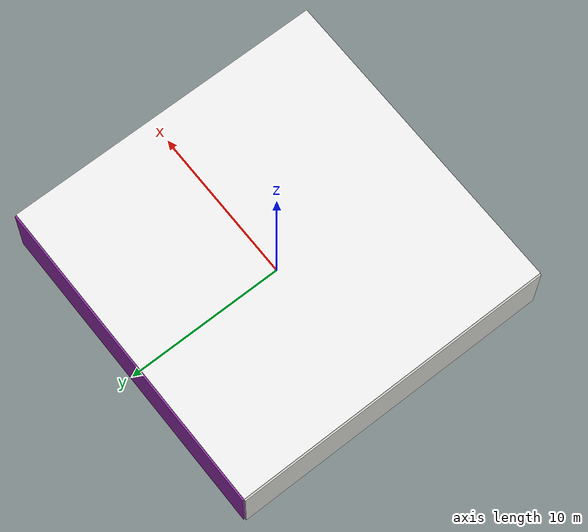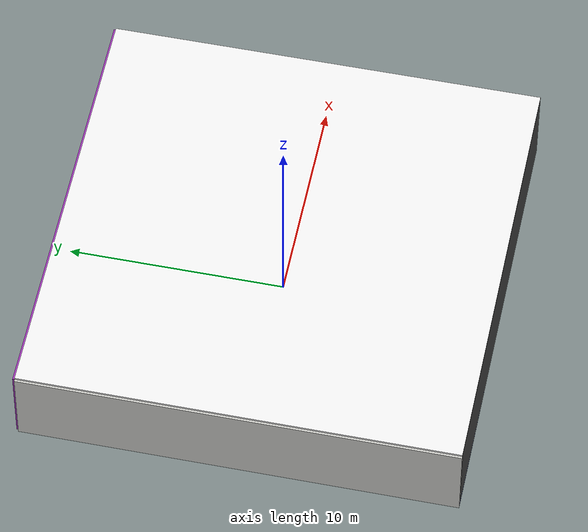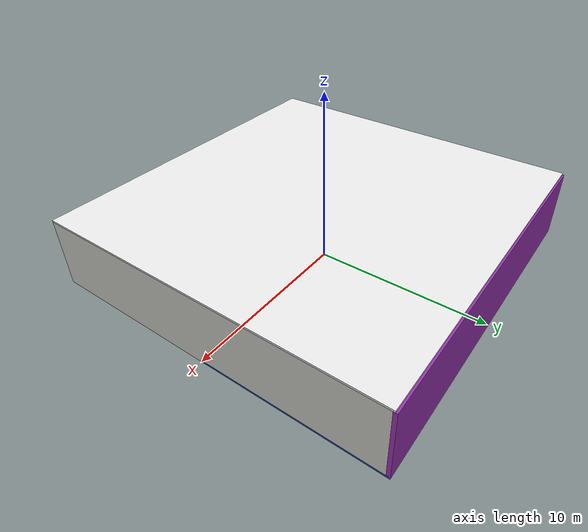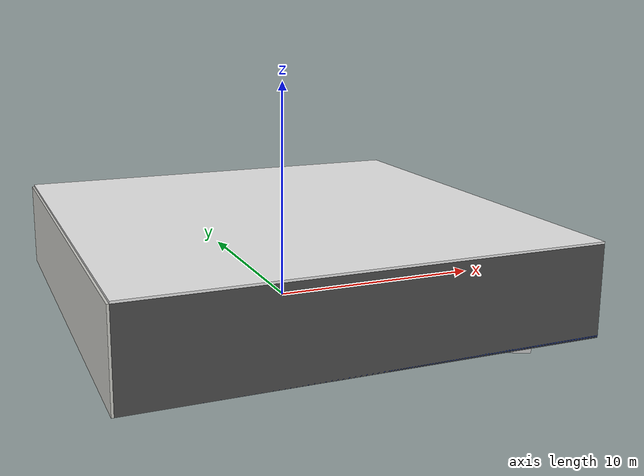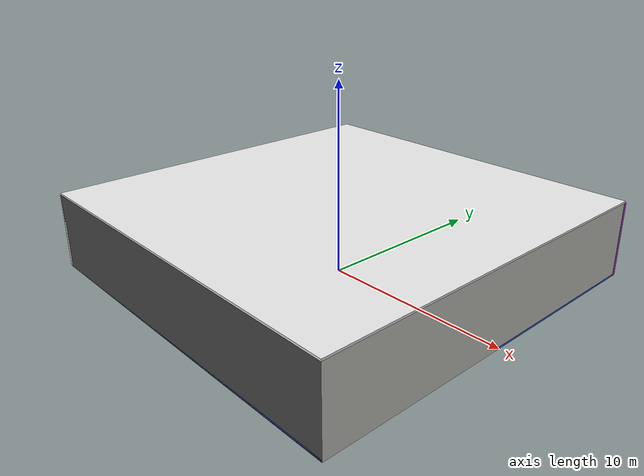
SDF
<sdf version="1.4">
 <world name="default">
  <physics type="ode">
   <max_step_size>0.001</max_step_size>
   <real_time_factor>1</real_time_factor>
   <real_time_update_rate>1000</real_time_update_rate>
   <gravity>0 0 -9.8</gravity>
  </physics>
  <scene><ambient>0.4 0.4 0.4 1</ambient><background>0.7 0.7 0.7 1</background><shadows>1</shadows></scene>
  <model name="Surrounding">
   <static>1</static>
   <link name="Ceiling">
    <collision name="Ceiling_Collision"><geometry><box><size>20 20 0.1</size></box></geometry></collision>
    <visual name="Ceiling_Visual">
     <geometry><box><size>20 20 0.1</size></box></geometry>
     <material>
      <script><uri>file://media/materials/scripts/gazebo.material</uri><name>Gazebo/WhiteGlow</name></script>
     </material>
    </visual>
    <pose>0 0 4.05 0 0 0</pose>
   </link>
   <link name="Wall_South">
    <collision name="Wall_South_Collision">
     <geometry><box><size>20 0 4</size></box></geometry>
     <pose>0 0 2 0 -0 0</pose>
    </collision>
    <visual name="Wall_South_Visual">
     <pose>0 0 2 0 -0 0</pose>
     <geometry><box><size>20 0 4</size></box></geometry>
     <material>
      <script><uri>file://media/materials/scripts/gazebo.material</uri><name>Gazebo/DarkGrey</name></script>
     </material>
    </visual>
    <velocity_decay><linear>0</linear><angular>0</angular></velocity_decay>
    <pose>0 -10 0 0 -0 0</pose>
   </link>
   <link name="Wall_East">
    <collision name="Wall_21_Collision">
     <geometry><box><size>20 0 4</size></box></geometry>
     <pose>0 0 2 0 -0 0</pose>
    </collision>
    <visual name="Wall_21_Visual">
     <pose>0 0 2 0 -0 0</pose>
     <geometry><box><size>20 0 4</size></box></geometry>
     <material>
      <script><uri>file://media/materials/scripts/gazebo.material</uri><name>Gazebo/CeilingTiled</name></script>
     </material>
    </visual>
    <velocity_decay><linear>0</linear><angular>0</angular></velocity_decay>
    <pose>10 0 0 0 -0 1.5708</pose>
   </link>
   <link name="Wall_North">
    <collision name="Wall_22_Collision">
     <geometry><box><size>20 0.2 4</size></box></geometry>
     <pose>0 0 2 0 -0 0</pose>
    </collision>
    <visual name="Wall_22_Visual">
     <pose>0 0 2 0 -0 0</pose>
     <geometry><box><size>20 0.2 4</size></box></geometry>
     <material>
      <script><uri>file://media/materials/scripts/gazebo.material</uri><name>Gazebo/PurpleGlow</name></script>
     </material>
    </visual>
    <velocity_decay><linear>0</linear><angular>0</angular></velocity_decay>
    <pose>0 10 0 0 -0 0</pose>
   </link>
   <link name="Wall_West">
    <collision name="Wall_23_Collision">
     <geometry><box><size>20 0.2 4</size></box></geometry>
     <pose>0 0 2 0 -0 0</pose>
    </collision>
    <visual name="Wall_23_Visual">
     <pose>0 0 2 0 -0 0</pose>
     <geometry><box><size>20 0.2 4</size></box></geometry>
     <material>
      <script><uri>file://media/materials/scripts/gazebo.material</uri><name>Gazebo/CeilingTiled</name></script>
     </material>
    </visual>
    <velocity_decay><linear>0</linear><angular>0</angular></velocity_decay>
    <pose>-10 0 0 0 0 -1.5708</pose>
   </link>
   <link name="Ground_link">
    <collision name="collision">
     <pose>0 0 .05 0 -0 0</pose>
     <geometry><box><size>20 20 0.1</size></box></geometry>
    </collision>
    <visual name="visual">
     <pose>0 0 .05 0 -0 0</pose>
     <geometry><box><size>20 20 0.1</size></box></geometry>
     <material>
      <script><uri>file://media/materials/scripts/gazebo.material</uri><name>Gazebo/Blue</name></script>
     </material>
    </visual>
   </link>
   <static>1</static>
  </model>
  <spherical_coordinates>
   <surface_model>EARTH_WGS84</surface_model>
   <latitude_deg>0</latitude_deg>
   <longitude_deg>0</longitude_deg>
   <elevation>0</elevation>
   <heading_deg>0</heading_deg>
  </spherical_coordinates>
  <light name="lightball_0" type="diffuse">
   <diffuse>0.8 0.8 0.8 1</diffuse>
   <specular>0.2 0.2 0.2 1</specular>
   <attenuation>
    <range>100</range>
    <constant>0.7</constant>
    <linear>0.01</linear>
    <quadratic>0.001</quadratic>
   </attenuation>
   <direction>-0.5 0.1 -0.9</direction>
   <pose>-5.92900883466 -7.11024071612 2.03149946961 0 0 0</pose>
  </light>
  <light name="lightball_1" type="diffuse">
   <diffuse>0.8 0.8 0.8 1</diffuse>
   <specular>0.2 0.2 0.2 1</specular>
   <attenuation>
    <range>100</range>
    <constant>0.7</constant>
    <linear>0.01</linear>
    <quadratic>0.001</quadratic>
   </attenuation>
   <direction>-0.5 0.1 -0.9</direction>
   <pose>9.77942903564 0.90079449236 2.87195660682 0 0 0</pose>
  </light>
  <light name="lightball_2" type="diffuse">
   <diffuse>0.8 0.8 0.8 1</diffuse>
   <specular>0.2 0.2 0.2 1</specular>
   <attenuation>
    <range>100</range>
    <constant>0.7</constant>
    <linear>0.01</linear>
    <quadratic>0.001</quadratic>
   </attenuation>
   <direction>-0.5 0.1 -0.9</direction>
   <pose>6.89525985996 -3.27311797453 0.812526864268 0 0 0</pose>
  </light>
  <light name="lightball_3" type="diffuse">
   <diffuse>0.8 0.8 0.8 1</diffuse>
   <specular>0.2 0.2 0.2 1</specular>
   <attenuation>
    <range>100</range>
    <constant>0.7</constant>
    <linear>0.01</linear>
    <quadratic>0.001</quadratic>
   </attenuation>
   <direction>-0.5 0.1 -0.9</direction>
   <pose>5.24834256476 -2.42402066356 0.627125367062 0 0 0</pose>
  </light>
  <light name="lightball_4" type="diffuse">
   <diffuse>0.8 0.8 0.8 1</diffuse>
   <specular>0.2 0.2 0.2 1</specular>
   <attenuation>
    <range>100</range>
    <constant>0.7</constant>
    <linear>0.01</linear>
    <quadratic>0.001</quadratic>
   </attenuation>
   <direction>-0.5 0.1 -0.9</direction>
   <pose>-5.1216310342 -2.14181098243 3.69414726254 0 0 0</pose>
  </light>
  <light name="lightball_5" type="diffuse">
   <diffuse>0.8 0.8 0.8 1</diffuse>
   <specular>0.2 0.2 0.2 1</specular>
   <attenuation>
    <range>100</range>
    <constant>0.7</constant>
    <linear>0.01</linear>
    <quadratic>0.001</quadratic>
   </attenuation>
   <direction>-0.5 0.1 -0.9</direction>
   <pose>0.404614685448 -6.83820146948 1.04304164017 0 0 0</pose>
  </light>
  <light name="lightball_6" type="diffuse">
   <diffuse>0.8 0.8 0.8 1</diffuse>
   <specular>0.2 0.2 0.2 1</specular>
   <attenuation>
    <range>100</range>
    <constant>0.7</constant>
    <linear>0.01</linear>
    <quadratic>0.001</quadratic>
   </attenuation>
   <direction>-0.5 0.1 -0.9</direction>
   <pose>-6.9505641156 -6.91479017707 2.73231037011 0 0 0</pose>
  </light>
  <light name="lightball_7" type="diffuse">
   <diffuse>0.8 0.8 0.8 1</diffuse>
   <specular>0.2 0.2 0.2 1</specular>
   <attenuation>
    <range>100</range>
    <constant>0.7</constant>
    <linear>0.01</linear>
    <quadratic>0.001</quadratic>
   </attenuation>
   <direction>-0.5 0.1 -0.9</direction>
   <pose>9.98648501388 5.70539168567 1.95982624486 0 0 0</pose>
  </light>
  <light name="lightball_8" type="diffuse">
   <diffuse>0.8 0.8 0.8 1</diffuse>
   <specular>0.2 0.2 0.2 1</specular>
   <attenuation>
    <range>100</range>
    <constant>0.7</constant>
    <linear>0.01</linear>
    <quadratic>0.001</quadratic>
   </attenuation>
   <direction>-0.5 0.1 -0.9</direction>
   <pose>6.96525036062 -1.98218554024 1.02183025276 0 0 0</pose>
  </light>
  <light name="lightball_9" type="diffuse">
   <diffuse>0.8 0.8 0.8 1</diffuse>
   <specular>0.2 0.2 0.2 1</specular>
   <attenuation>
    <range>100</range>
    <constant>0.7</constant>
    <linear>0.01</linear>
    <quadratic>0.001</quadratic>
   </attenuation>
   <direction>-0.5 0.1 -0.9</direction>
   <pose>7.59536818402 -8.91374955464 2.06220002957 0 0 0</pose>
  </light>
  <include><uri>model://cabinet</uri><pose>-7.46669534016 -1.86791014534 0 0 0 0.325404185889</pose></include>
  <include>
   <uri>model://robocup_3Dsim_goal</uri>
   <pose>-0.334081484571 8.55093537941 0 0 0 0.343530871151</pose>
  </include>
  <include>
   <uri>model://robocup_3Dsim_goal</uri>
   <pose>0.477220319962 4.62169103101 0 0 0 1.96445483023</pose>
  </include>
  <include>
   <uri>model://textured_shapes</uri>
   <pose>5.57108947763 -8.12100455422 0 0 0 1.15734406992</pose>
  </include>
  <include>
   <uri>model://textured_shapes</uri>
   <pose>5.54443336633 -0.948107142233 0 0 0 2.9097695073</pose>
  </include>
  <include><uri>model://cabinet</uri><pose>6.82854898724 -4.50720166585 0 0 0 2.44717017941</pose></include>
 </world>
</sdf>

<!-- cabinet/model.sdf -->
<sdf version="1.5">
  <model name="cabinet">
    <static>true</static>
    <link name="cabinet_bottom_plate">
      <inertial>
        <pose>0 0 -1 0 0 0</pose>
        <inertia>
          <ixx>2.050000</ixx>
          <ixy>0</ixy>
          <ixz>0</ixz>
          <iyy>2.050000</iyy>
          <iyz>0</iyz>
          <izz>2.050000</izz>
        </inertia>
        <mass>25.000000</mass>
      </inertial>
      <collision name="cabinet_bottom_plate_geom">
        <pose>0 0 0.010000 0 0 0</pose>
        <geometry>
          <box>
            <size>0.450000 0.450000 0.020000</size>
          </box>
        </geometry>
      </collision>
      <visual name="cabinet_bottom_plate_geom_visual">
        <pose>0 0 0.010000 0 0 0</pose>
        <geometry>
          <box>
            <size>0.450000 0.450000 0.020000</size>
          </box>
        </geometry>
        <material>
          <script>
            <uri>model://media/materials/scripts/gazebo.material</uri>
            <name>Gazebo/Wood</name>
          </script>
        </material>
      </visual>
      <collision name="cabinet_bottom_plate_geom_cabinet_back_plate">
        <pose>0.235000 0 0.510000 0 0 0</pose>
        <geometry>
          <box>
            <size>0.020000 0.450000 1.020000</size>
          </box>
        </geometry>
      </collision>
      <visual name="cabinet_bottom_plate_geom_cabinet_back_plate_visual">
        <pose>0.235000 0 0.510000 0 0 0</pose>
        <geometry>
          <box>
            <size>0.020000 0.450000 1.020000</size>
          </box>
        </geometry>
        <material>
          <script>
            <uri>model://media/materials/scripts/gazebo.material</uri>
            <name>Gazebo/Wood</name>
          </script>
        </material>
      </visual>
      <collision name="cabinet_bottom_plate_geom_cabinet_left_plate">
        <pose>0 0.235000 0.510000 0 0 0</pose>
        <geometry>
          <box>
            <size>0.450000 0.020000 1.020000</size>
          </box>
        </geometry>
      </collision>
      <visual name="cabinet_bottom_plate_geom_cabinet_left_plate_visual">
        <pose>0 0.235000 0.510000 0 0 0</pose>
        <geometry>
          <box>
            <size>0.450000 0.020000 1.020000</size>
          </box>
        </geometry>
        <material>
          <script>
            <uri>model://media/materials/scripts/gazebo.material</uri>
            <name>Gazebo/Wood</name>
          </script>
        </material>
      </visual>
      <collision name="cabinet_bottom_plate_geom_cabinet_middle_plate">
        <pose>0 0 0.510000 0 0 0</pose>
        <geometry>
          <box>
            <size>0.450000 0.450000 0.020000</size>
          </box>
        </geometry>
      </collision>
      <visual name="cabinet_bottom_plate_geom_cabinet_middle_plate_visual">
        <pose>0 0 0.510000 0 0 0</pose>
        <geometry>
          <box>
            <size>0.450000 0.450000 0.020000</size>
          </box>
        </geometry>
        <material>
          <script>
            <uri>model://media/materials/scripts/gazebo.material</uri>
            <name>Gazebo/Wood</name>
          </script>
        </material>
      </visual>
      <collision name="cabinet_bottom_plate_geom_cabinet_right_plate">
        <pose>0 -0.235000 0.510000 0 0 0</pose>
        <geometry>
          <box>
            <size>0.450000 0.020000 1.020000</size>
          </box>
        </geometry>
      </collision>
      <visual name="cabinet_bottom_plate_geom_cabinet_right_plate_visual">
        <pose>0 -0.235000 0.510000 0 0 0</pose>
        <geometry>
          <box>
            <size>0.450000 0.020000 1.020000</size>
          </box>
        </geometry>
        <material>
          <script>
            <uri>model://media/materials/scripts/gazebo.material</uri>
            <name>Gazebo/Wood</name>
          </script>
        </material>
      </visual>
      <collision name="cabinet_bottom_plate_geom_cabinet_top_plate">
        <pose>0 0 1.010000 0 0 0</pose>
        <geometry>
          <box>
            <size>0.450000 0.450000 0.020000</size>
          </box>
        </geometry>
      </collision>
      <visual name="cabinet_bottom_plate_geom_cabinet_top_plate_visual">
        <pose>0 0 1.010000 0 0 0</pose>
        <geometry>
          <box>
            <size>0.450000 0.450000 0.020000</size>
          </box>
        </geometry>
        <material>
          <script>
            <uri>model://media/materials/scripts/gazebo.material</uri>
            <name>Gazebo/Wood</name>
          </script>
        </material>
      </visual>
    </link>
  </model>
</sdf>

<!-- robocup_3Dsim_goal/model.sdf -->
<sdf version="1.5">
  <model name="robocup_3d_goal">
    <static>true</static>
    <link name="left_post">
      <pose>0 1.05 0.45 0 0 0</pose>
      <collision name="collision">
        <geometry>
          <cylinder>
            <radius>0.05</radius>
            <length>0.9</length>
          </cylinder>
        </geometry>
      </collision>
      <visual name="visual">
        <geometry>
          <cylinder>
            <radius>0.05</radius>
            <length>0.9</length>
          </cylinder>
        </geometry>
        <material>
          <script>
            <uri>file://media/materials/scripts/gazebo.material</uri>
            <name>Gazebo/ZincYellow</name>
          </script>
        </material>
      </visual>
    </link>
    <link name="left_support_horiz_lower">
      <pose>0.30 1.05 0.01 0 0 0</pose>
      <collision name="collision">
        <geometry>
          <box>
            <size>0.50 0.02 0.02</size>
          </box>
        </geometry>
      </collision>
      <visual name="visual">
        <geometry>
          <box>
            <size>0.50 0.02 0.02</size>
          </box>
        </geometry>
        <material>
          <script>
            <uri>file://media/materials/scripts/gazebo.material</uri>
            <name>Gazebo/White</name>
          </script>
        </material>
      </visual>
    </link>
    <link name="left_support_horiz_upper">
      <pose>0.30 1.05 0.79 0 0 0</pose>
      <collision name="collision">
        <geometry>
          <box>
            <size>0.50 0.02 0.02</size>
          </box>
        </geometry>
      </collision>
      <visual name="visual">
        <geometry>
          <box>
            <size>0.50 0.02 0.02</size>
          </box>
        </geometry>
        <material>
          <script>
            <uri>file://media/materials/scripts/gazebo.material</uri>
            <name>Gazebo/White</name>
          </script>
        </material>
      </visual>
    </link>
    <link name="left_support_vertical">
      <pose>0.56 1.05 0.4 0 1.5708 0</pose>
      <collision name="collision">
        <geometry>
          <box>
            <size>0.80 0.02 0.02</size>
          </box>
        </geometry>
      </collision>
      <visual name="visual">
        <geometry>
          <box>
            <size>0.80 0.02 0.02</size>
          </box>
        </geometry>
        <material>
          <script>
            <uri>file://media/materials/scripts/gazebo.material</uri>
            <name>Gazebo/White</name>
          </script>
        </material>
      </visual>
    </link>
    <link name="right_support_horiz_lower">
      <pose>0.30 -1.05 0.01 0 0 0</pose>
      <collision name="collision">
        <geometry>
          <box>
            <size>0.50 0.02 0.02</size>
          </box>
        </geometry>
      </collision>
      <visual name="visual">
        <geometry>
          <box>
            <size>0.50 0.02 0.02</size>
          </box>
        </geometry>
        <material>
          <script>
            <uri>file://media/materials/scripts/gazebo.material</uri>
            <name>Gazebo/White</name>
          </script>
        </material>
      </visual>
    </link>
    <link name="right_support_horiz_upper">
      <pose>0.30 -1.05 0.79 0 0 0</pose>
      <collision name="collision">
        <geometry>
          <box>
            <size>0.50 0.02 0.02</size>
          </box>
        </geometry>
      </collision>
      <visual name="visual">
        <geometry>
          <box>
            <size>0.50 0.02 0.02</size>
          </box>
        </geometry>
        <material>
          <script>
            <uri>file://media/materials/scripts/gazebo.material</uri>
            <name>Gazebo/White</name>
          </script>
        </material>
      </visual>
    </link>
    <link name="right_support_vertical">
      <pose>0.56 -1.05 0.4 0 1.5708 0</pose>
      <collision name="collision">
        <geometry>
          <box>
            <size>0.80 0.02 0.02</size>
          </box>
        </geometry>
      </collision>
      <visual name="visual">
        <geometry>
          <box>
            <size>0.80 0.02 0.02</size>
          </box>
        </geometry>
        <material>
          <script>
            <uri>file://media/materials/scripts/gazebo.material</uri>
            <name>Gazebo/White</name>
          </script>
        </material>
      </visual>
    </link>
    <link name="center_support_horiz_lower">
      <pose>0.56 0 0.01 0 1.5708 0</pose>
      <collision name="collision">
        <geometry>
          <box>
            <size>0.02 2.08 0.02</size>
          </box>
        </geometry>
      </collision>
      <visual name="visual">
        <geometry>
          <box>
            <size>0.02 2.08 0.02</size>
          </box>
        </geometry>
        <material>
          <script>
            <uri>file://media/materials/scripts/gazebo.material</uri>
            <name>Gazebo/White</name>
          </script>
        </material>
      </visual>
    </link>
    <link name="center_support_horiz_upper">
      <pose>0.56 0 0.79 0 1.5708 0</pose>
      <collision name="collision">
        <geometry>
          <box>
            <size>0.02 2.08 0.02</size>
          </box>
        </geometry>
      </collision>
      <visual name="visual">
        <geometry>
          <box>
            <size>0.02 2.08 0.02</size>
          </box>
        </geometry>
        <material>
          <script>
            <uri>file://media/materials/scripts/gazebo.material</uri>
            <name>Gazebo/White</name>
          </script>
        </material>
      </visual>
    </link>
    <link name="right_post">
      <pose>0 -1.05 0.45 0 0 0</pose>
      <collision name="collision">
        <geometry>
          <cylinder>
            <radius>0.05</radius>
            <length>0.9</length>
          </cylinder>
        </geometry>
      </collision>
      <visual name="visual">
        <geometry>
          <cylinder>
            <radius>0.05</radius>
            <length>0.9</length>
          </cylinder>
        </geometry>
        <material>
          <script>
            <uri>file://media/materials/scripts/gazebo.material</uri>
            <name>Gazebo/ZincYellow</name>
          </script>
        </material>
      </visual>
    </link>
    <link name="crossbar">
      <pose>0 0 0.85 1.57 1.57 0</pose>
      <collision name="collision">
        <geometry>
          <cylinder>
            <radius>0.05</radius>
            <length>2.0</length>
          </cylinder>
        </geometry>
      </collision>
      <visual name="visual">
        <geometry>
          <cylinder>
            <radius>0.05</radius>
            <length>2.0</length>
          </cylinder>
        </geometry>
        <material>
          <script>
            <uri>file://media/materials/scripts/gazebo.material</uri>
            <name>Gazebo/ZincYellow</name>
          </script>
        </material>
      </visual>
    </link>
    <link name="center_net">
      <pose>0.56 0 0.40 0 0 0</pose>
      <collision name="collision">
        <geometry>
          <box>
            <size>0.01 2.1 0.80</size>
          </box>
        </geometry>
      </collision>
      <visual name="visual">
        <geometry>
          <box>
            <size>0.01 2.1 0.80</size>
          </box>
        </geometry>
        <material>
          <script>
            <uri>model://../model_source/models/robocup09_spl_field/materials/scripts/</uri>
            <uri>model://../model_source/models/robocup09_spl_field/materials/textures/</uri>
            <name>RoboCup/Net</name>
          </script>
        </material>
      </visual>
    </link>
    <link name="left_net">
      <pose>0.30 1.05 0.40 0 0 0</pose>
      <collision name="collision">
        <geometry>
          <box>
            <size>0.50 0.01 0.76</size>
          </box>
        </geometry>
      </collision>
      <visual name="visual">
        <geometry>
          <box>
            <size>0.50 0.01 0.76</size>
          </box>
        </geometry>
        <material>
          <script>
            <uri>model://../model_source/models/robocup09_spl_field/materials/scripts/</uri>
            <uri>model://../model_source/models/robocup09_spl_field/materials/textures/</uri>
            <name>RoboCup/Net</name>
          </script>
        </material>
      </visual>
    </link>
    <link name="right_net">
      <pose>0.30 -1.05 0.40 0 0 0</pose>
      <collision name="collision">
        <geometry>
          <box>
            <size>0.50 0.01 0.76</size>
          </box>
        </geometry>
      </collision>
      <visual name="visual">
        <geometry>
          <box>
            <size>0.50 0.01 0.76</size>
          </box>
        </geometry>
        <material>
          <script>
            <uri>model://../model_source/models/robocup09_spl_field/materials/scripts/</uri>
            <uri>model://../model_source/models/robocup09_spl_field/materials/textures/</uri>
            <name>RoboCup/Net</name>
          </script>
        </material>
      </visual>
    </link>
  </model>
</sdf>

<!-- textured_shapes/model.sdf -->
<sdf version="1.6">
  <model name="textured_shapes">
    <pose>0 0 0.5 0 0 0</pose>
    <link name="box">
      <pose>0 -1.5 0 0 0 0</pose>
      <collision name="collision">
        <geometry>
          <box>
            <size>1 1 1</size>
          </box>
        </geometry>
      </collision>
      <visual name="visual">
        <geometry>
          <box>
            <size>1 1 1</size>
          </box>
        </geometry>
        <material>
          <script>
            <uri>model://../model_source/models/textured_shapes/materials/scripts</uri>
            <uri>model://../model_source/models/textured_shapes/materials/textures</uri>
            <name>TexturedShape/Squares</name>
          </script>
        </material>
      </visual>
    </link>
    <link name="sphere">
      <collision name="collision">
        <geometry>
          <sphere>
            <radius>0.5</radius>
          </sphere>
        </geometry>
      </collision>
      <visual name="visual">
        <geometry>
          <sphere>
            <radius>0.5</radius>
          </sphere>
        </geometry>
        <material>
          <script>
            <uri>model://../model_source/models/textured_shapes/materials/scripts</uri>
            <uri>model://../model_source/models/textured_shapes/materials/textures</uri>
            <name>TexturedShape/Squares</name>
          </script>
        </material>
      </visual>
    </link>
    <link name="cylinder">
      <pose>0 1.5 0 0 0 0</pose>
      <collision name="collision">
        <geometry>
          <cylinder>
            <radius>0.5</radius>
            <length>1</length>
          </cylinder>
        </geometry>
      </collision>
      <visual name="visual">
        <geometry>
          <cylinder>
            <radius>0.5</radius>
            <length>1</length>
          </cylinder>
        </geometry>
        <material>
          <script>
            <uri>model://../model_source/models/textured_shapes/materials/scripts</uri>
            <uri>model://../model_source/models/textured_shapes/materials/textures</uri>
            <name>TexturedShape/Squares</name>
          </script>
        </material>
      </visual>
    </link>
  </model>
</sdf>
